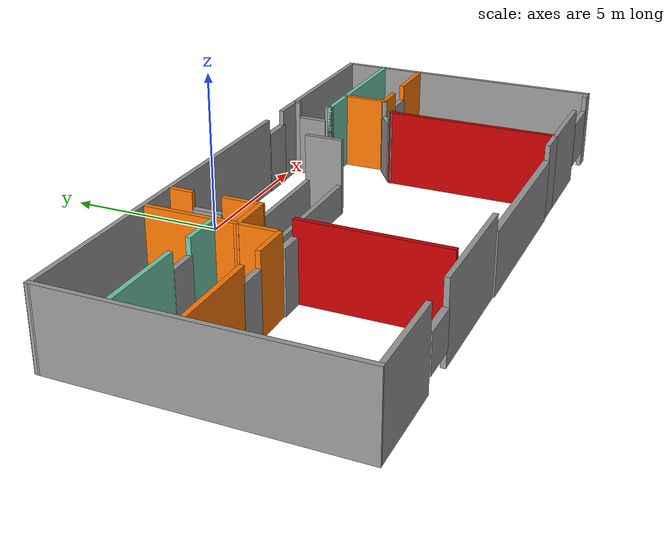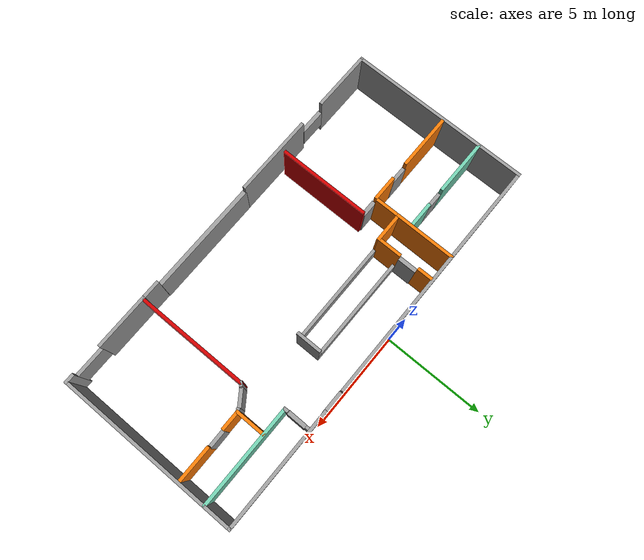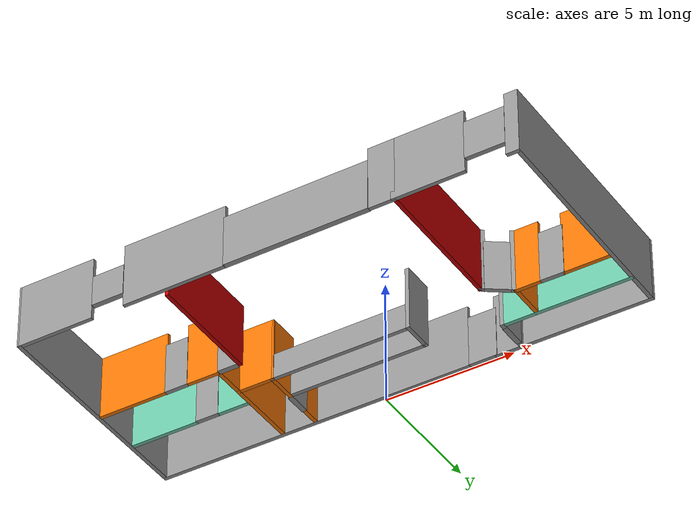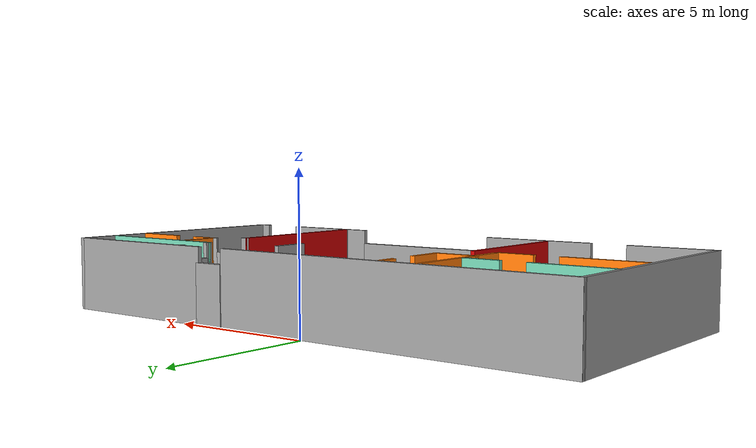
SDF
<?xml version='1.0'?>
<sdf version='1.7'>
  <model name='Apt357'>
    <pose>0.707084 -4.53764 0 0 -0 0</pose>
    <link name='Door_0'>
      <collision name='Door_0_Collision'>
        <geometry>
          <box>
            <size>0.940227 0.2 2</size>
          </box>
        </geometry>
        <pose>0 0 1 0 -0 0</pose>
      </collision>
      <visual name='Door_0_Visual'>
        <pose>0 0 1 0 -0 0</pose>
        <geometry>
          <box>
            <size>0.940227 0.2 2</size>
          </box>
        </geometry>
        <material>
          <script>
            <uri>file://media/materials/scripts/gazebo.material</uri>
            <name>Gazebo/Grey</name>
          </script>
        </material>
      </visual>
      <pose>4.69619 3.68552 0 0 -0 1.5657</pose>
    </link>
    <link name='Door_1'>
      <collision name='Door_1_Collision'>
        <geometry>
          <box>
            <size>0.9 0.17 2</size>
          </box>
        </geometry>
        <pose>0 0 1 0 -0 0</pose>
      </collision>
      <visual name='Door_1_Visual'>
        <pose>0 0 1 0 -0 0</pose>
        <geometry>
          <box>
            <size>0.9 0.17 2</size>
          </box>
        </geometry>
        <material>
          <script>
            <uri>file://media/materials/scripts/gazebo.material</uri>
            <name>Gazebo/Grey</name>
          </script>
        </material>
      </visual>
      <pose>7.39446 1.68103 0 0 -0 -3.13021</pose>
    </link>
    <link name='Door_2'>
      <collision name='Door_2_Collision'>
        <geometry>
          <box>
            <size>0.9 0.17 2</size>
          </box>
        </geometry>
        <pose>0 0 1 0 -0 0</pose>
      </collision>
      <visual name='Door_2_Visual'>
        <pose>0 0 1 0 -0 0</pose>
        <geometry>
          <box>
            <size>0.9 0.17 2</size>
          </box>
        </geometry>
        <material>
          <script>
            <uri>file://media/materials/scripts/gazebo.material</uri>
            <name>Gazebo/Grey</name>
          </script>
        </material>
      </visual>
      <pose>5.51244 1.32777 0 0 -0 0.607379</pose>
    </link>
    <link name='Door_3'>
      <collision name='Door_3_Collision'>
        <geometry>
          <box>
            <size>5.53391 0.2 2</size>
          </box>
        </geometry>
        <pose>0 0 1 0 -0 0</pose>
      </collision>
      <visual name='Door_3_Visual'>
        <pose>0 0 1 0 -0 0</pose>
        <geometry>
          <box>
            <size>5.53391 0.2 2</size>
          </box>
        </geometry>
        <material>
          <script>
            <uri>file://media/materials/scripts/gazebo.material</uri>
            <name>Gazebo/Grey</name>
          </script>
        </material>
      </visual>
      <pose>1.32913 -4.46042 0 0 -0 0</pose>
    </link>
    <link name='Door_4'>
      <collision name='Door_4_Collision'>
        <geometry>
          <box>
            <size>1.08354 0.2 2</size>
          </box>
        </geometry>
        <pose>0 0 1 0 -0 0</pose>
      </collision>
      <visual name='Door_4_Visual'>
        <pose>0 0 1 0 -0 0</pose>
        <geometry>
          <box>
            <size>1.08354 0.2 2</size>
          </box>
        </geometry>
        <material>
          <script>
            <uri>file://media/materials/scripts/gazebo.material</uri>
            <name>Gazebo/Grey</name>
          </script>
        </material>
      </visual>
      <pose>3.22104 4.3933 0 0 -0 0</pose>
    </link>
    <link name='Door_5'>
      <collision name='Door_5_Collision'>
        <geometry>
          <box>
            <size>0.913225 0.2 2</size>
          </box>
        </geometry>
        <pose>0 0 1 0 -0 0</pose>
      </collision>
      <visual name='Door_5_Visual'>
        <pose>0 0 1 0 -0 0</pose>
        <geometry>
          <box>
            <size>0.913225 0.2 2</size>
          </box>
        </geometry>
        <material>
          <script>
            <uri>file://media/materials/scripts/gazebo.material</uri>
            <name>Gazebo/Grey</name>
          </script>
        </material>
      </visual>
      <pose>-3.39979 3.13846 0 0 0 -1.5708</pose>
    </link>
    <link name='Door_7'>
      <collision name='Door_7_Collision'>
        <geometry>
          <box>
            <size>0.782138 0.2 2</size>
          </box>
        </geometry>
        <pose>0 0 1 0 -0 0</pose>
      </collision>
      <visual name='Door_7_Visual'>
        <pose>0 0 1 0 -0 0</pose>
        <geometry>
          <box>
            <size>0.782138 0.2 2</size>
          </box>
        </geometry>
        <material>
          <script>
            <uri>file://media/materials/scripts/gazebo.material</uri>
            <name>Gazebo/Grey</name>
          </script>
        </material>
      </visual>
      <pose>-4.3167 0.241425 0 0 -0 0</pose>
    </link>
    <link name='Door_8'>
      <collision name='Door_8_Collision'>
        <geometry>
          <box>
            <size>0.9 0.17 2</size>
          </box>
        </geometry>
        <pose>0 0 1 0 -0 0</pose>
      </collision>
      <visual name='Door_8_Visual'>
        <pose>0 0 1 0 -0 0</pose>
        <geometry>
          <box>
            <size>0.9 0.17 2</size>
          </box>
        </geometry>
        <material>
          <script>
            <uri>file://media/materials/scripts/gazebo.material</uri>
            <name>Gazebo/Grey</name>
          </script>
        </material>
      </visual>
      <pose>-6.41069 0.265381 0 0 -0 3.13789</pose>
    </link>
    <link name='Door_9'>
      <collision name='Door_9_Collision'>
        <geometry>
          <box>
            <size>0.9 0.17 2</size>
          </box>
        </geometry>
        <pose>0 0 1 0 -0 0</pose>
      </collision>
      <visual name='Door_9_Visual'>
        <pose>0 0 1 0 -0 0</pose>
        <geometry>
          <box>
            <size>0.9 0.17 2</size>
          </box>
        </geometry>
        <material>
          <script>
            <uri>file://media/materials/scripts/gazebo.material</uri>
            <name>Gazebo/Grey</name>
          </script>
        </material>
      </visual>
      <pose>-6.43144 2.21143 0 0 -0 3.14159</pose>
    </link>
    <link name='Wall_10'>
      <collision name='Wall_10_Collision'>
        <geometry>
          <box>
            <size>5 0.15 2.5</size>
          </box>
        </geometry>
        <pose>0 0 1.25 0 -0 0</pose>
      </collision>
      <visual name='Wall_10_Visual'>
        <pose>0 0 1.25 0 -0 0</pose>
        <geometry>
          <box>
            <size>5 0.15 2.5</size>
          </box>
        </geometry>
        <material>
          <script>
            <uri>file://media/materials/scripts/gazebo.material</uri>
            <name>Gazebo/Grey</name>
          </script>
          <ambient>0.435294 0.796078 0.67451 1</ambient>
        </material>
        <meta>
          <layer>0</layer>
        </meta>
      </visual>
      <pose>7.12809 3.06139 0 0 -0 0</pose>
    </link>
    <link name='Wall_12'>
      <collision name='Wall_12_Collision'>
        <geometry>
          <box>
            <size>1.5 0.15 2.5</size>
          </box>
        </geometry>
        <pose>0 0 1.25 0 -0 0</pose>
      </collision>
      <visual name='Wall_12_Visual'>
        <pose>0 0 1.25 0 -0 0</pose>
        <geometry>
          <box>
            <size>1.5 0.15 2.5</size>
          </box>
        </geometry>
        <material>
          <script>
            <uri>file://media/materials/scripts/gazebo.material</uri>
            <name>Gazebo/Grey</name>
          </script>
          <ambient>0.996078 0.47451 0.0196078 1</ambient>
        </material>
        <meta>
          <layer>0</layer>
        </meta>
      </visual>
      <pose>6.02154 2.34761 0 0 -0 -1.5708</pose>
    </link>
    <link name='Wall_13'>
      <collision name='Wall_13_Collision'>
        <geometry>
          <box>
            <size>1 0.15 2.5</size>
          </box>
        </geometry>
        <pose>0 0 1.25 0 -0 0</pose>
      </collision>
      <visual name='Wall_13_Visual'>
        <pose>0 0 1.25 0 -0 0</pose>
        <geometry>
          <box>
            <size>1 0.15 2.5</size>
          </box>
        </geometry>
        <material>
          <script>
            <uri>file://media/materials/scripts/gazebo.material</uri>
            <name>Gazebo/Grey</name>
          </script>
          <ambient>0.996078 0.47451 0.0196078 1</ambient>
        </material>
        <meta>
          <layer>0</layer>
        </meta>
      </visual>
      <pose>6.44654 1.67261 0 0 -0 0</pose>
    </link>
    <link name='Wall_15'>
      <collision name='Wall_15_Collision'>
        <geometry>
          <box>
            <size>1.75 0.15 2.5</size>
          </box>
        </geometry>
        <pose>0 0 1.25 0 -0 0</pose>
      </collision>
      <visual name='Wall_15_Visual'>
        <pose>0 0 1.25 0 -0 0</pose>
        <geometry>
          <box>
            <size>1.75 0.15 2.5</size>
          </box>
        </geometry>
        <material>
          <script>
            <uri>file://media/materials/scripts/gazebo.material</uri>
            <name>Gazebo/Grey</name>
          </script>
          <ambient>0.996078 0.47451 0.0196078 1</ambient>
        </material>
        <meta>
          <layer>0</layer>
        </meta>
      </visual>
      <pose>8.65573 1.68871 0 0 -0 0</pose>
    </link>
    <link name='Wall_18'>
      <collision name='Wall_18_Collision'>
        <geometry>
          <box>
            <size>0.25 0.15 2.5</size>
          </box>
        </geometry>
        <pose>0 0 1.25 0 -0 0</pose>
      </collision>
      <visual name='Wall_18_Visual'>
        <pose>0 0 1.25 0 -0 0</pose>
        <geometry>
          <box>
            <size>0.25 0.15 2.5</size>
          </box>
        </geometry>
        <material>
          <script>
            <uri>file://media/materials/scripts/gazebo.material</uri>
            <name>Gazebo/Grey</name>
          </script>
          <ambient>1 1 1 1</ambient>
        </material>
        <meta>
          <layer>0</layer>
        </meta>
      </visual>
      <pose>5.97824 1.64761 0 0 -0 -2.61799</pose>
    </link>
    <link name='Wall_2'>
      <collision name='Wall_2_Collision'>
        <geometry>
          <box>
            <size>8.97428 0.15 2.5</size>
          </box>
        </geometry>
        <pose>0 0 1.25 0 -0 0</pose>
      </collision>
      <visual name='Wall_2_Visual'>
        <pose>0 0 1.25 0 -0 0</pose>
        <geometry>
          <box>
            <size>8.97428 0.15 2.5</size>
          </box>
        </geometry>
        <material>
          <script>
            <uri>file://media/materials/scripts/gazebo.material</uri>
            <name>Gazebo/Grey</name>
          </script>
          <ambient>1 1 1 1</ambient>
        </material>
        <meta>
          <layer>0</layer>
        </meta>
      </visual>
      <pose>-9.59402 -0.028495 0 0 -0 -1.56966</pose>
    </link>
    <link name='Wall_21'>
      <collision name='Wall_21_Collision'>
        <geometry>
          <box>
            <size>0.25 0.15 2.5</size>
          </box>
        </geometry>
        <pose>0 0 1.25 0 -0 0</pose>
      </collision>
      <visual name='Wall_21_Visual'>
        <pose>0 0 1.25 0 -0 0</pose>
        <geometry>
          <box>
            <size>0.25 0.15 2.5</size>
          </box>
        </geometry>
        <material>
          <script>
            <uri>file://media/materials/scripts/gazebo.material</uri>
            <name>Gazebo/Grey</name>
          </script>
          <ambient>1 1 1 1</ambient>
        </material>
        <meta>
          <layer>0</layer>
        </meta>
      </visual>
      <pose>5.08442 1.02531 0 0 -0 -2.35619</pose>
    </link>
    <link name='Wall_27'>
      <collision name='Wall_27_Collision'>
        <geometry>
          <box>
            <size>5.5 0.15 2.5</size>
          </box>
        </geometry>
        <pose>0 0 1.25 0 -0 0</pose>
      </collision>
      <visual name='Wall_27_Visual'>
        <pose>0 0 1.25 0 -0 0</pose>
        <geometry>
          <box>
            <size>5.5 0.15 2.5</size>
          </box>
        </geometry>
        <material>
          <script>
            <uri>file://media/materials/scripts/gazebo.material</uri>
            <name>Gazebo/Grey</name>
          </script>
          <ambient>0.8 0 0 1</ambient>
        </material>
        <meta>
          <layer>0</layer>
        </meta>
      </visual>
      <pose>5.04907 -1.68504 0 0 -0 -1.5708</pose>
    </link>
    <link name='Wall_29'>
      <collision name='Wall_29_Collision'>
        <geometry>
          <box>
            <size>0.5 0.15 2.5</size>
          </box>
        </geometry>
        <pose>0 0 1.25 0 -0 0</pose>
      </collision>
      <visual name='Wall_29_Visual'>
        <pose>0 0 1.25 0 -0 0</pose>
        <geometry>
          <box>
            <size>0.5 0.15 2.5</size>
          </box>
        </geometry>
        <material>
          <script>
            <uri>file://media/materials/scripts/gazebo.material</uri>
            <name>Gazebo/Grey</name>
          </script>
          <ambient>1 1 1 1</ambient>
        </material>
        <meta>
          <layer>0</layer>
        </meta>
      </visual>
      <pose>9.42411 -4.46264 0 0 -0 3.14159</pose>
    </link>
    <link name='Wall_31'>
      <collision name='Wall_31_Collision'>
        <geometry>
          <box>
            <size>2.75 0.15 2.5</size>
          </box>
        </geometry>
        <pose>0 0 1.25 0 -0 0</pose>
      </collision>
      <visual name='Wall_31_Visual'>
        <pose>0 0 1.25 0 -0 0</pose>
        <geometry>
          <box>
            <size>2.75 0.15 2.5</size>
          </box>
        </geometry>
        <material>
          <script>
            <uri>file://media/materials/scripts/gazebo.material</uri>
            <name>Gazebo/Grey</name>
          </script>
          <ambient>1 1 1 1</ambient>
        </material>
        <meta>
          <layer>0</layer>
        </meta>
      </visual>
      <pose>6.32022 -4.46113 0 0 -0 3.14159</pose>
    </link>
    <link name='Wall_33'>
      <collision name='Wall_33_Collision'>
        <geometry>
          <box>
            <size>1 0.15 2.5</size>
          </box>
        </geometry>
        <pose>0 0 1.25 0 -0 0</pose>
      </collision>
      <visual name='Wall_33_Visual'>
        <pose>0 0 1.25 0 -0 0</pose>
        <geometry>
          <box>
            <size>1 0.15 2.5</size>
          </box>
        </geometry>
        <material>
          <script>
            <uri>file://media/materials/scripts/gazebo.material</uri>
            <name>Gazebo/Grey</name>
          </script>
          <ambient>1 1 1 1</ambient>
        </material>
        <meta>
          <layer>0</layer>
        </meta>
      </visual>
      <pose>4.59522 -4.46113 0 0 -0 3.14159</pose>
    </link>
    <link name='Wall_35'>
      <collision name='Wall_35_Collision'>
        <geometry>
          <box>
            <size>3.0034 0.15 2.5</size>
          </box>
        </geometry>
        <pose>0 0 1.25 0 -0 0</pose>
      </collision>
      <visual name='Wall_35_Visual'>
        <pose>0 0 1.25 0 -0 0</pose>
        <geometry>
          <box>
            <size>3.0034 0.15 2.5</size>
          </box>
        </geometry>
        <material>
          <script>
            <uri>file://media/materials/scripts/gazebo.material</uri>
            <name>Gazebo/Grey</name>
          </script>
          <ambient>0.996078 0.47451 0.0196078 1</ambient>
        </material>
        <meta>
          <layer>0</layer>
        </meta>
      </visual>
      <pose>-4.72037 2.93601 0 0 -0 -1.57307</pose>
    </link>
    <link name='Wall_39'>
      <collision name='Wall_39_Collision'>
        <geometry>
          <box>
            <size>12.3481 0.15 2.5</size>
          </box>
        </geometry>
        <pose>0 0 1.25 0 -0 0</pose>
      </collision>
      <visual name='Wall_39_Visual'>
        <pose>0 0 1.25 0 -0 0</pose>
        <geometry>
          <box>
            <size>12.3481 0.15 2.5</size>
          </box>
        </geometry>
        <material>
          <script>
            <uri>file://media/materials/scripts/gazebo.material</uri>
            <name>Gazebo/Grey</name>
          </script>
          <ambient>1 1 1 1</ambient>
        </material>
        <meta>
          <layer>0</layer>
        </meta>
      </visual>
      <pose>-3.49996 4.38836 0 0 -0 -0.000164</pose>
    </link>
    <link name='Wall_41'>
      <collision name='Wall_41_Collision'>
        <geometry>
          <box>
            <size>6 0.15 2.5</size>
          </box>
        </geometry>
        <pose>0 0 1.25 0 -0 0</pose>
      </collision>
      <visual name='Wall_41_Visual'>
        <pose>0 0 1.25 0 -0 0</pose>
        <geometry>
          <box>
            <size>6 0.15 2.5</size>
          </box>
        </geometry>
        <material>
          <script>
            <uri>file://media/materials/scripts/gazebo.material</uri>
            <name>Gazebo/Grey</name>
          </script>
          <ambient>1 1 1 1</ambient>
        </material>
        <meta>
          <layer>0</layer>
        </meta>
      </visual>
      <pose>6.67411 4.38736 0 0 -0 0</pose>
    </link>
    <link name='Wall_43'>
      <collision name='Wall_43_Collision'>
        <geometry>
          <box>
            <size>1.50654 0.15 2.5</size>
          </box>
        </geometry>
        <pose>0 0 1.25 0 -0 0</pose>
      </collision>
      <visual name='Wall_43_Visual'>
        <pose>0 0 1.25 0 -0 0</pose>
        <geometry>
          <box>
            <size>1.50654 0.15 2.5</size>
          </box>
        </geometry>
        <material>
          <script>
            <uri>file://media/materials/scripts/gazebo.material</uri>
            <name>Gazebo/Grey</name>
          </script>
          <ambient>0.996078 0.47451 0.0196078 1</ambient>
        </material>
        <meta>
          <layer>0</layer>
        </meta>
      </visual>
      <pose>-4.04535 1.51095 0 0 -0 0.00241</pose>
    </link>
    <link name='Wall_44'>
      <collision name='Wall_44_Collision'>
        <geometry>
          <box>
            <size>1.25006 0.15 2.5</size>
          </box>
        </geometry>
        <pose>0 0 1.25 0 -0 0</pose>
      </collision>
      <visual name='Wall_44_Visual'>
        <pose>0 0 1.25 0 -0 0</pose>
        <geometry>
          <box>
            <size>1.25006 0.15 2.5</size>
          </box>
        </geometry>
        <material>
          <script>
            <uri>file://media/materials/scripts/gazebo.material</uri>
            <name>Gazebo/Grey</name>
          </script>
          <ambient>0.996078 0.47451 0.0196078 1</ambient>
        </material>
        <meta>
          <layer>0</layer>
        </meta>
      </visual>
      <pose>-3.36708 2.06261 0 0 -0 1.5708</pose>
    </link>
    <link name='Wall_46'>
      <collision name='Wall_46_Collision'>
        <geometry>
          <box>
            <size>0.75 0.15 2.5</size>
          </box>
        </geometry>
        <pose>0 0 1.25 0 -0 0</pose>
      </collision>
      <visual name='Wall_46_Visual'>
        <pose>0 0 1.25 0 -0 0</pose>
        <geometry>
          <box>
            <size>0.75 0.15 2.5</size>
          </box>
        </geometry>
        <material>
          <script>
            <uri>file://media/materials/scripts/gazebo.material</uri>
            <name>Gazebo/Grey</name>
          </script>
          <ambient>0.996078 0.47451 0.0196078 1</ambient>
        </material>
        <meta>
          <layer>0</layer>
        </meta>
      </visual>
      <pose>-3.4003 3.97345 0 0 -0 1.5708</pose>
    </link>
    <link name='Wall_5'>
      <collision name='Wall_5_Collision'>
        <geometry>
          <box>
            <size>9 0.15 2.5</size>
          </box>
        </geometry>
        <pose>0 0 1.25 0 -0 0</pose>
      </collision>
      <visual name='Wall_5_Visual'>
        <pose>0 0 1.25 0 -0 0</pose>
        <geometry>
          <box>
            <size>9 0.15 2.5</size>
          </box>
        </geometry>
        <material>
          <script>
            <uri>file://media/materials/scripts/gazebo.material</uri>
            <name>Gazebo/Grey</name>
          </script>
          <ambient>1 1 1 1</ambient>
        </material>
        <meta>
          <layer>0</layer>
        </meta>
      </visual>
      <pose>9.59911 -0.037639 0 0 -0 1.5708</pose>
    </link>
    <link name='Wall_50'>
      <collision name='Wall_50_Collision'>
        <geometry>
          <box>
            <size>5.5 0.15 1</size>
          </box>
        </geometry>
        <pose>0 0 0.5 0 -0 0</pose>
      </collision>
      <visual name='Wall_50_Visual'>
        <pose>0 0 0.5 0 -0 0</pose>
        <geometry>
          <box>
            <size>5.5 0.15 1</size>
          </box>
        </geometry>
        <material>
          <script>
            <uri>file://media/materials/scripts/gazebo.material</uri>
            <name>Gazebo/Grey</name>
          </script>
          <ambient>1 1 1 1</ambient>
        </material>
        <meta>
          <layer>0</layer>
        </meta>
      </visual>
      <pose>-0.692084 1.52128 0 0 -0 0</pose>
    </link>
    <link name='Wall_54'>
      <collision name='Wall_54_Collision'>
        <geometry>
          <box>
            <size>5.5 0.15 1</size>
          </box>
        </geometry>
        <pose>0 0 0.5 0 -0 0</pose>
      </collision>
      <visual name='Wall_54_Visual'>
        <pose>0 0 0.5 0 -0 0</pose>
        <geometry>
          <box>
            <size>5.5 0.15 1</size>
          </box>
        </geometry>
        <material>
          <script>
            <uri>file://media/materials/scripts/gazebo.material</uri>
            <name>Gazebo/Grey</name>
          </script>
          <ambient>1 1 1 1</ambient>
        </material>
        <meta>
          <layer>0</layer>
        </meta>
      </visual>
      <pose>-0.692084 2.61264 0 0 -0 0</pose>
    </link>
    <link name='Wall_56'>
      <collision name='Wall_56_Collision'>
        <geometry>
          <box>
            <size>1.24136 0.15 2.5</size>
          </box>
        </geometry>
        <pose>0 0 1.25 0 -0 0</pose>
      </collision>
      <visual name='Wall_56_Visual'>
        <pose>0 0 1.25 0 -0 0</pose>
        <geometry>
          <box>
            <size>1.24136 0.15 2.5</size>
          </box>
        </geometry>
        <material>
          <script>
            <uri>file://media/materials/scripts/gazebo.material</uri>
            <name>Gazebo/Grey</name>
          </script>
          <ambient>1 1 1 1</ambient>
        </material>
        <meta>
          <layer>0</layer>
        </meta>
      </visual>
      <pose>1.98292 2.06696 0 0 -0 -1.5708</pose>
    </link>
    <link name='Wall_59'>
      <collision name='Wall_59_Collision'>
        <geometry>
          <box>
            <size>3 0.15 2.5</size>
          </box>
        </geometry>
        <pose>0 0 1.25 0 -0 0</pose>
      </collision>
      <visual name='Wall_59_Visual'>
        <pose>0 0 1.25 0 -0 0</pose>
        <geometry>
          <box>
            <size>3 0.15 2.5</size>
          </box>
        </geometry>
        <material>
          <script>
            <uri>file://media/materials/scripts/gazebo.material</uri>
            <name>Gazebo/Grey</name>
          </script>
          <ambient>1 1 1 1</ambient>
        </material>
        <meta>
          <layer>0</layer>
        </meta>
      </visual>
      <pose>-8.15402 -4.44064 0 0 -0 0</pose>
    </link>
    <link name='Wall_61'>
      <collision name='Wall_61_Collision'>
        <geometry>
          <box>
            <size>4 0.15 2.5</size>
          </box>
        </geometry>
        <pose>0 0 1.25 0 -0 0</pose>
      </collision>
      <visual name='Wall_61_Visual'>
        <pose>0 0 1.25 0 -0 0</pose>
        <geometry>
          <box>
            <size>4 0.15 2.5</size>
          </box>
        </geometry>
        <material>
          <script>
            <uri>file://media/materials/scripts/gazebo.material</uri>
            <name>Gazebo/Grey</name>
          </script>
          <ambient>1 1 1 1</ambient>
        </material>
        <meta>
          <layer>0</layer>
        </meta>
      </visual>
      <pose>-3.39773 -4.44367 0 0 -0 0</pose>
    </link>
    <link name='Wall_63'>
      <collision name='Wall_63_Collision'>
        <geometry>
          <box>
            <size>1.25 0.15 2.5</size>
          </box>
        </geometry>
        <pose>0 0 1.25 0 -0 0</pose>
      </collision>
      <visual name='Wall_63_Visual'>
        <pose>0 0 1.25 0 -0 0</pose>
        <geometry>
          <box>
            <size>1.25 0.15 2.5</size>
          </box>
        </geometry>
        <material>
          <script>
            <uri>file://media/materials/scripts/gazebo.material</uri>
            <name>Gazebo/Grey</name>
          </script>
          <ambient>0.996078 0.47451 0.0196078 1</ambient>
        </material>
        <meta>
          <layer>0</layer>
        </meta>
      </visual>
      <pose>-4.71946 0.959312 0 0 -0 -1.56917</pose>
    </link>
    <link name='Wall_68'>
      <collision name='Wall_68_Collision'>
        <geometry>
          <box>
            <size>4.5 0.15 2.5</size>
          </box>
        </geometry>
        <pose>0 0 1.25 0 -0 0</pose>
      </collision>
      <visual name='Wall_68_Visual'>
        <pose>0 0 1.25 0 -0 0</pose>
        <geometry>
          <box>
            <size>4.5 0.15 2.5</size>
          </box>
        </geometry>
        <material>
          <script>
            <uri>file://media/materials/scripts/gazebo.material</uri>
            <name>Gazebo/Grey</name>
          </script>
          <ambient>0.8 0 0 1</ambient>
        </material>
        <meta>
          <layer>0</layer>
        </meta>
      </visual>
      <pose>-3.86018 -1.94563 0 0 -0 -1.5708</pose>
    </link>
    <link name='Wall_7'>
      <collision name='Wall_7_Collision'>
        <geometry>
          <box>
            <size>0.25 0.15 2.5</size>
          </box>
        </geometry>
        <pose>0 0 1.25 0 -0 0</pose>
      </collision>
      <visual name='Wall_7_Visual'>
        <pose>0 0 1.25 0 -0 0</pose>
        <geometry>
          <box>
            <size>0.25 0.15 2.5</size>
          </box>
        </geometry>
        <material>
          <script>
            <uri>file://media/materials/scripts/gazebo.material</uri>
            <name>Gazebo/Grey</name>
          </script>
          <ambient>1 1 1 1</ambient>
        </material>
        <meta>
          <layer>0</layer>
        </meta>
      </visual>
      <pose>4.69481 4.28508 0 0 -0 -1.5708</pose>
    </link>
    <link name='Wall_71'>
      <collision name='Wall_71_Collision'>
        <geometry>
          <box>
            <size>1.25 0.15 2.5</size>
          </box>
        </geometry>
        <pose>0 0 1.25 0 -0 0</pose>
      </collision>
      <visual name='Wall_71_Visual'>
        <pose>0 0 1.25 0 -0 0</pose>
        <geometry>
          <box>
            <size>1.25 0.15 2.5</size>
          </box>
        </geometry>
        <material>
          <script>
            <uri>file://media/materials/scripts/gazebo.material</uri>
            <name>Gazebo/Grey</name>
          </script>
          <ambient>0.996078 0.47451 0.0196078 1</ambient>
        </material>
        <meta>
          <layer>0</layer>
        </meta>
      </visual>
      <pose>-5.33522 0.26814 0 0 -0 3.14159</pose>
    </link>
    <link name='Wall_73'>
      <collision name='Wall_73_Collision'>
        <geometry>
          <box>
            <size>2.75 0.15 2.5</size>
          </box>
        </geometry>
        <pose>0 0 1.25 0 -0 0</pose>
      </collision>
      <visual name='Wall_73_Visual'>
        <pose>0 0 1.25 0 -0 0</pose>
        <geometry>
          <box>
            <size>2.75 0.15 2.5</size>
          </box>
        </geometry>
        <material>
          <script>
            <uri>file://media/materials/scripts/gazebo.material</uri>
            <name>Gazebo/Grey</name>
          </script>
          <ambient>0.996078 0.47451 0.0196078 1</ambient>
        </material>
        <meta>
          <layer>0</layer>
        </meta>
      </visual>
      <pose>-8.17183 0.26472 0 0 -0 3.14159</pose>
    </link>
    <link name='Wall_76'>
      <collision name='Wall_76_Collision'>
        <geometry>
          <box>
            <size>2.75 0.15 2.5</size>
          </box>
        </geometry>
        <pose>0 0 1.25 0 -0 0</pose>
      </collision>
      <visual name='Wall_76_Visual'>
        <pose>0 0 1.25 0 -0 0</pose>
        <geometry>
          <box>
            <size>2.75 0.15 2.5</size>
          </box>
        </geometry>
        <material>
          <script>
            <uri>file://media/materials/scripts/gazebo.material</uri>
            <name>Gazebo/Grey</name>
          </script>
          <ambient>0.435294 0.796078 0.67451 1</ambient>
        </material>
        <meta>
          <layer>0</layer>
        </meta>
      </visual>
      <pose>-8.23488 2.22575 0 0 -0 0</pose>
    </link>
    <link name='Wall_78'>
      <collision name='Wall_78_Collision'>
        <geometry>
          <box>
            <size>1.25 0.15 2.5</size>
          </box>
        </geometry>
        <pose>0 0 1.25 0 -0 0</pose>
      </collision>
      <visual name='Wall_78_Visual'>
        <pose>0 0 1.25 0 -0 0</pose>
        <geometry>
          <box>
            <size>1.25 0.15 2.5</size>
          </box>
        </geometry>
        <material>
          <script>
            <uri>file://media/materials/scripts/gazebo.material</uri>
            <name>Gazebo/Grey</name>
          </script>
          <ambient>0.435294 0.796078 0.67451 1</ambient>
        </material>
        <meta>
          <layer>0</layer>
        </meta>
      </visual>
      <pose>-5.39191 2.22022 0 0 -0 0</pose>
    </link>
    <link name='Wall_9'>
      <collision name='Wall_9_Collision'>
        <geometry>
          <box>
            <size>0.25 0.15 2.5</size>
          </box>
        </geometry>
        <pose>0 0 1.25 0 -0 0</pose>
      </collision>
      <visual name='Wall_9_Visual'>
        <pose>0 0 1.25 0 -0 0</pose>
        <geometry>
          <box>
            <size>0.25 0.15 2.5</size>
          </box>
        </geometry>
        <material>
          <script>
            <uri>file://media/materials/scripts/gazebo.material</uri>
            <name>Gazebo/Grey</name>
          </script>
          <ambient>1 1 1 1</ambient>
        </material>
        <meta>
          <layer>0</layer>
        </meta>
      </visual>
      <pose>4.70309 3.11139 0 0 -0 -1.5708</pose>
    </link>
    <link name='Window_0'>
      <collision name='Window_0_Collision'>
        <geometry>
          <box>
            <size>1.5 0.17 1.5</size>
          </box>
        </geometry>
        <pose>0 0 0.75 0 -0 0</pose>
      </collision>
      <visual name='Window_0_Visual'>
        <pose>0 0 0.75 0 -0 0</pose>
        <geometry>
          <box>
            <size>1.5 0.17 1.5</size>
          </box>
        </geometry>
        <material>
          <script>
            <uri>file://media/materials/scripts/gazebo.material</uri>
            <name>Gazebo/Grey</name>
          </script>
        </material>
      </visual>
      <pose>8.42477 -4.46113 0.5 0 -0 0</pose>
    </link>
    <link name='Window_1'>
      <collision name='Window_1_Collision'>
        <geometry>
          <box>
            <size>1.25 0.2 1.2</size>
          </box>
        </geometry>
        <pose>0 0 0.6 0 -0 0</pose>
      </collision>
      <visual name='Window_1_Visual'>
        <pose>0 0 0.6 0 -0 0</pose>
        <geometry>
          <box>
            <size>1.25 0.2 1.2</size>
          </box>
        </geometry>
        <material>
          <script>
            <uri>file://media/materials/scripts/gazebo.material</uri>
            <name>Gazebo/Grey</name>
          </script>
        </material>
      </visual>
      <pose>-6.02068 -4.44394 0.5 0 -0 0</pose>
    </link>
    <static>1</static>
  </model>
</sdf>
